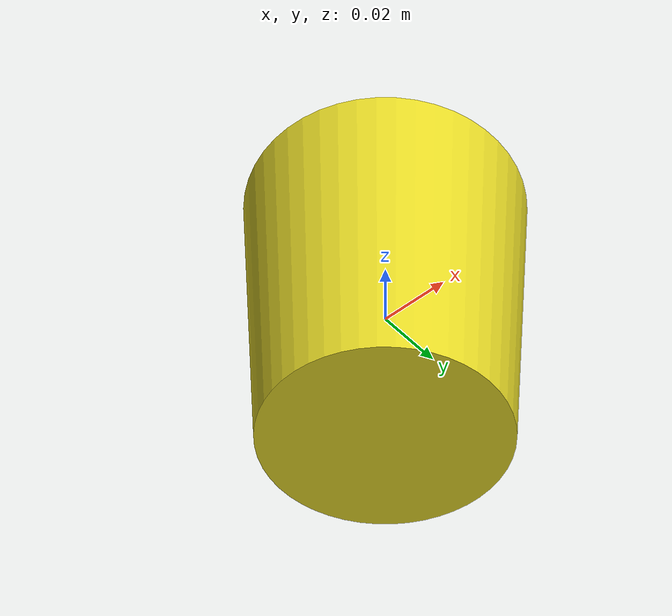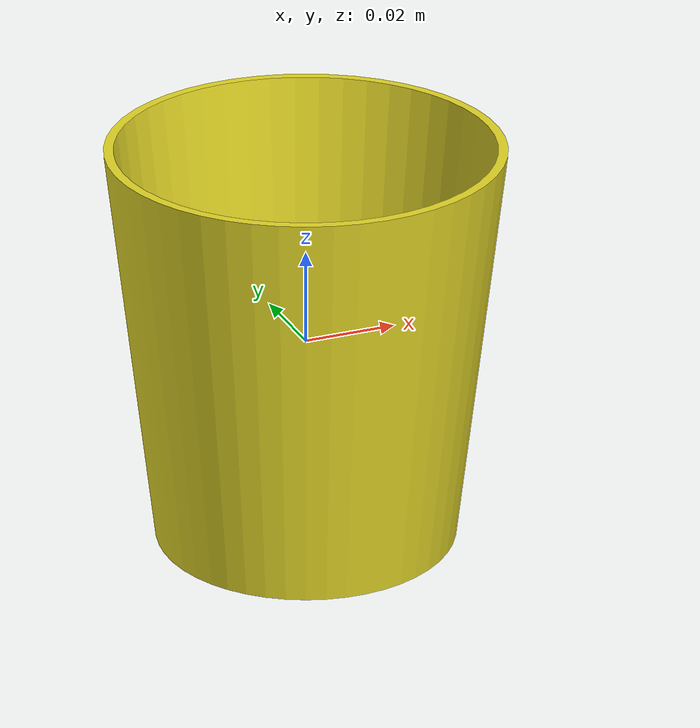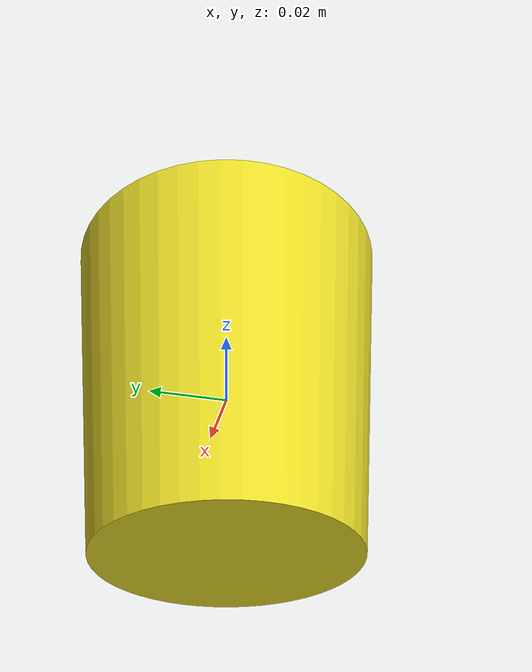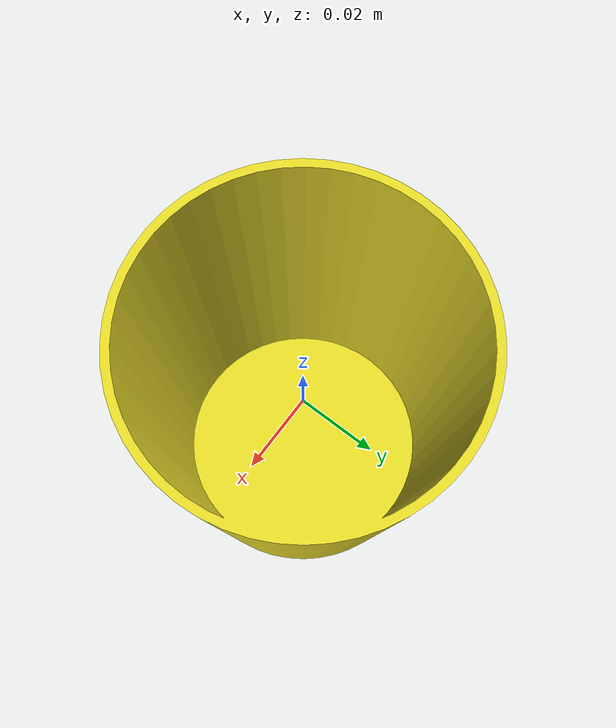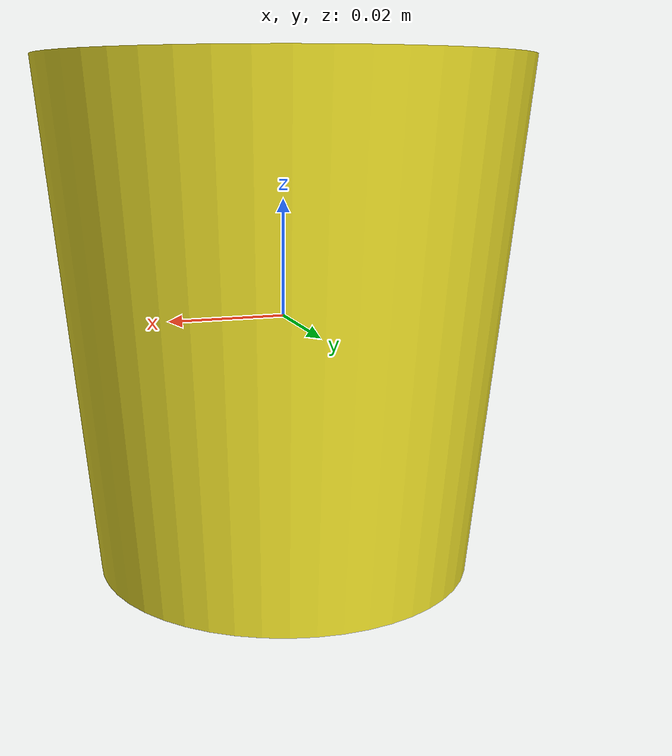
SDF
<sdf version="1.4">
  <model name="ikea_cup_solbraend">
    <static>0</static>
    <link name="link">

      <inertial>
        <mass>0.005</mass>
        <inertia>
          <ixx>0.000000</ixx>
          <ixy>0.000000</ixy>
          <ixz>0.000000</ixz>
          <iyy>0.000000</iyy>
          <iyz>0.000000</iyz>
          <izz>0.000000</izz>
        </inertia>
      </inertial>

      <collision name="colision1">
        <pose>0 0 0 0 0 0</pose>
        <geometry>
          <mesh>
            <uri>model://ikea_cup_yellow/meshes/ikea_cup_solbraend.stl</uri>
	    <scale> 1 1 1 </scale>
          </mesh>
        </geometry>
 	<surface>
          <friction>
            <ode>
              <mu>10</mu>
              <mu2>10</mu2>
              <fdir1>0 0 0</fdir1>
            </ode>
          </friction>
        </surface>
      </collision>

      <visual name="visual1">
        <pose>0 0 0 0 0 0</pose>
        <geometry>
          <mesh>
            <uri>model://ikea_cup_yellow/meshes/ikea_cup_solbraend.stl</uri>
	    <scale> 1 1 1 </scale>
          </mesh>
        </geometry>
        <material>
          <script>
            <uri>file://media/materials/scripts/gazebo.material</uri>
            <name>Gazebo/Yellow</name>
          </script>
        </material>
      </visual>

      <velocity_decay>
        <linear>0.000000</linear>
        <angular>0.000000</angular>
      </velocity_decay>
      <self_collide>0</self_collide>
      <kinematic>0</kinematic>
      <gravity>1</gravity>
    </link>
  </model>
</sdf>
